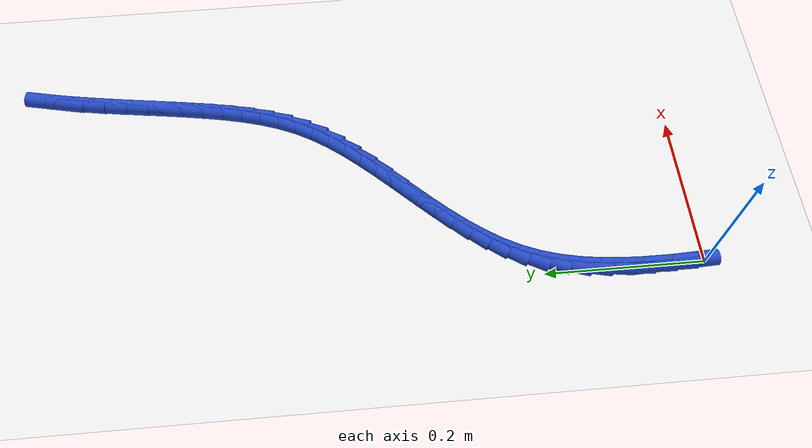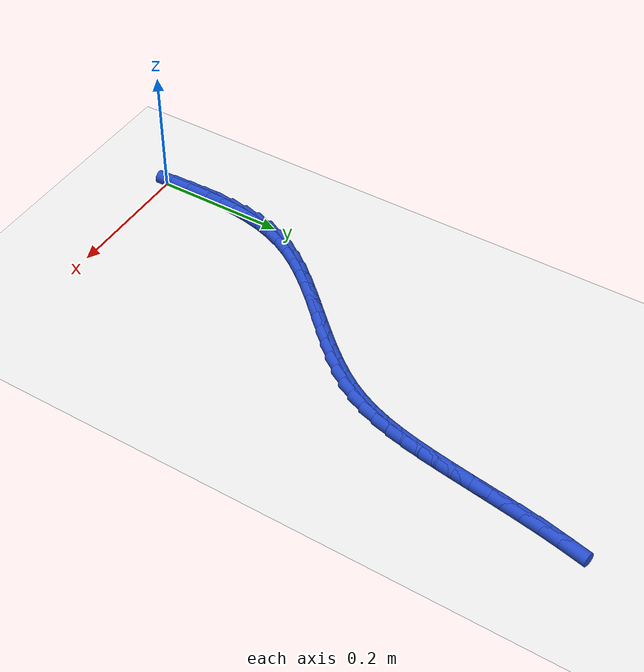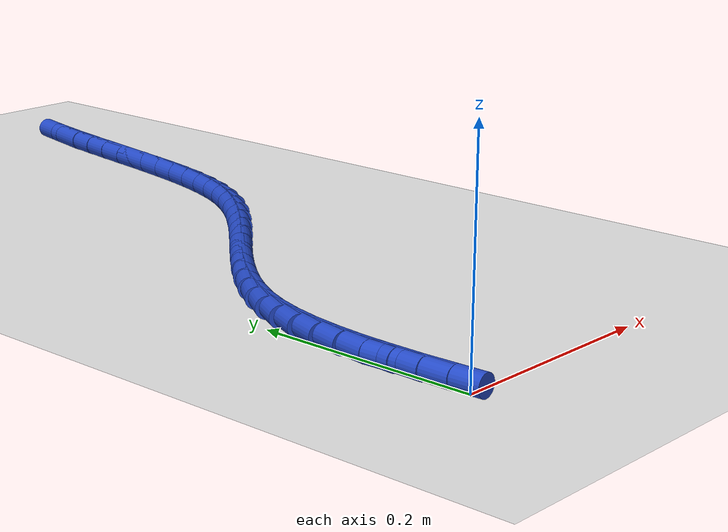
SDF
<sdf version="1.6">
 <world name="default">
  <model name="ground_plane">
   <static>1</static>
   <link name="link">
    <collision name="collision">
     <geometry><plane><normal>0 0 1</normal><size>100 100</size></plane></geometry>
     <surface><friction><ode><mu>100</mu><mu2>50</mu2></ode></friction></surface>
    </collision>
    <visual name="visual">
     <cast_shadows>0</cast_shadows>
     <geometry><plane><normal>0 0 1</normal><size>100 100</size></plane></geometry>
     <material>
      <script><uri>file://media/materials/scripts/gazebo.material</uri><name>Gazebo/WhiteGlow</name></script>
     </material>
    </visual>
   </link>
  </model>
  <model name="line">
   <link name="link_2">
    <pose>-0.001651303130338141 0.05288871180380666 0.01 0 1.57 1.5679038501124116</pose>
    <collision name="collision">
     <geometry><cylinder><radius>0.01</radius><length>0.08</length></cylinder></geometry>
    </collision>
    <visual name="visual">
     <material>
      <script><name>Gazebo/Blue</name><uri>file://media/materials/scripts/gazebo.material</uri></script>
     </material>
     <geometry><cylinder><radius>0.01</radius><length>0.08</length></cylinder></geometry>
    </visual>
   </link>
   <link name="link_3">
    <pose>-0.0015748714768153258 0.07931293186144053 0.01 0 1.57 1.5318934016315766</pose>
    <collision name="collision">
     <geometry><cylinder><radius>0.01</radius><length>0.08</length></cylinder></geometry>
    </collision>
    <visual name="visual">
     <material>
      <script><name>Gazebo/Blue</name><uri>file://media/materials/scripts/gazebo.material</uri></script>
     </material>
     <geometry><cylinder><radius>0.01</radius><length>0.08</length></cylinder></geometry>
    </visual>
   </link>
   <link name="link_4">
    <pose>-0.0005546666619875092 0.10552407373591659 0.01 0 1.57 1.4850914954284056</pose>
    <collision name="collision">
     <geometry><cylinder><radius>0.01</radius><length>0.08</length></cylinder></geometry>
    </collision>
    <visual name="visual">
     <material>
      <script><name>Gazebo/Blue</name><uri>file://media/materials/scripts/gazebo.material</uri></script>
     </material>
     <geometry><cylinder><radius>0.01</radius><length>0.08</length></cylinder></geometry>
    </visual>
   </link>
   <link name="link_5">
    <pose>0.0016660995757781182 0.13137239671200127 0.01 0 1.57 1.4266286491698912</pose>
    <collision name="collision">
     <geometry><cylinder><radius>0.01</radius><length>0.08</length></cylinder></geometry>
    </collision>
    <visual name="visual">
     <material>
      <script><name>Gazebo/Blue</name><uri>file://media/materials/scripts/gazebo.material</uri></script>
     </material>
     <geometry><cylinder><radius>0.01</radius><length>0.08</length></cylinder></geometry>
    </visual>
   </link>
   <link name="link_6">
    <pose>0.005344215498114369 0.15670816007446092 0.01 0 1.57 1.3556345875797808</pose>
    <collision name="collision">
     <geometry><cylinder><radius>0.01</radius><length>0.08</length></cylinder></geometry>
    </collision>
    <visual name="visual">
     <material>
      <script><name>Gazebo/Blue</name><uri>file://media/materials/scripts/gazebo.material</uri></script>
     </material>
     <geometry><cylinder><radius>0.01</radius><length>0.08</length></cylinder></geometry>
    </visual>
   </link>
   <link name="link_7">
    <pose>0.010736469366654046 0.18138162310806194 0.01 0 1.57 1.271485818599171</pose>
    <collision name="collision">
     <geometry><cylinder><radius>0.01</radius><length>0.08</length></cylinder></geometry>
    </collision>
    <visual name="visual">
     <material>
      <script><name>Gazebo/Blue</name><uri>file://media/materials/scripts/gazebo.material</uri></script>
     </material>
     <geometry><cylinder><radius>0.01</radius><length>0.08</length></cylinder></geometry>
    </visual>
   </link>
   <link name="link_8">
    <pose>0.01809964944302997 0.20524304509757088 0.01 0 1.57 1.1742409841898394</pose>
    <collision name="collision">
     <geometry><cylinder><radius>0.01</radius><length>0.08</length></cylinder></geometry>
    </collision>
    <visual name="visual">
     <material>
      <script><name>Gazebo/Blue</name><uri>file://media/materials/scripts/gazebo.material</uri></script>
     </material>
     <geometry><cylinder><radius>0.01</radius><length>0.08</length></cylinder></geometry>
    </visual>
   </link>
   <link name="link_9">
    <pose>0.027688948665799223 0.22814348191232364 0.01 0 1.57 1.0736087766955555</pose>
    <collision name="collision">
     <geometry><cylinder><radius>0.01</radius><length>0.08</length></cylinder></geometry>
    </collision>
    <visual name="visual">
     <material>
      <script><name>Gazebo/Blue</name><uri>file://media/materials/scripts/gazebo.material</uri></script>
     </material>
     <geometry><cylinder><radius>0.01</radius><length>0.08</length></cylinder></geometry>
    </visual>
   </link>
   <link name="link_10">
    <pose>0.03956611918923954 0.250030579226104 0.01 0 1.57 0.9879249587448946</pose>
    <collision name="collision">
     <geometry><cylinder><radius>0.01</radius><length>0.08</length></cylinder></geometry>
    </collision>
    <visual name="visual">
     <material>
      <script><name>Gazebo/Blue</name><uri>file://media/materials/scripts/gazebo.material</uri></script>
     </material>
     <geometry><cylinder><radius>0.01</radius><length>0.08</length></cylinder></geometry>
    </visual>
   </link>
   <link name="link_11">
    <pose>0.05341700344949822 0.2710396838032357 0.01 0 1.57 0.919418216857093</pose>
    <collision name="collision">
     <geometry><cylinder><radius>0.01</radius><length>0.08</length></cylinder></geometry>
    </collision>
    <visual name="visual">
     <material>
      <script><name>Gazebo/Blue</name><uri>file://media/materials/scripts/gazebo.material</uri></script>
     </material>
     <geometry><cylinder><radius>0.01</radius><length>0.08</length></cylinder></geometry>
    </visual>
   </link>
   <link name="link_12">
    <pose>0.06888422368421243 0.29132772333027546 0.01 0 1.57 0.8674553870164292</pose>
    <collision name="collision">
     <geometry><cylinder><radius>0.01</radius><length>0.08</length></cylinder></geometry>
    </collision>
    <visual name="visual">
     <material>
      <script><name>Gazebo/Blue</name><uri>file://media/materials/scripts/gazebo.material</uri></script>
     </material>
     <geometry><cylinder><radius>0.01</radius><length>0.08</length></cylinder></geometry>
    </visual>
   </link>
   <link name="link_13">
    <pose>0.08561040213101945 0.3110516254937802 0.01 0 1.57 0.8310818433353483</pose>
    <collision name="collision">
     <geometry><cylinder><radius>0.01</radius><length>0.08</length></cylinder></geometry>
    </collision>
    <visual name="visual">
     <material>
      <script><name>Gazebo/Blue</name><uri>file://media/materials/scripts/gazebo.material</uri></script>
     </material>
     <geometry><cylinder><radius>0.01</radius><length>0.08</length></cylinder></geometry>
    </visual>
   </link>
   <link name="link_14">
    <pose>0.10323816102755638 0.3303683179803069 0.01 0 1.57 0.8094130949772309</pose>
    <collision name="collision">
     <geometry><cylinder><radius>0.01</radius><length>0.08</length></cylinder></geometry>
    </collision>
    <visual name="visual">
     <material>
      <script><name>Gazebo/Blue</name><uri>file://media/materials/scripts/gazebo.material</uri></script>
     </material>
     <geometry><cylinder><radius>0.01</radius><length>0.08</length></cylinder></geometry>
    </visual>
   </link>
   <link name="link_15">
    <pose>0.12141012261146059 0.3494347284764126 0.01 0 1.57 0.8018509878825213</pose>
    <collision name="collision">
     <geometry><cylinder><radius>0.01</radius><length>0.08</length></cylinder></geometry>
    </collision>
    <visual name="visual">
     <material>
      <script><name>Gazebo/Blue</name><uri>file://media/materials/scripts/gazebo.material</uri></script>
     </material>
     <geometry><cylinder><radius>0.01</radius><length>0.08</length></cylinder></geometry>
    </visual>
   </link>
   <link name="link_16">
    <pose>0.13976890912036913 0.36840778466865387 0.01 0 1.57 0.8081853271306338</pose>
    <collision name="collision">
     <geometry><cylinder><radius>0.01</radius><length>0.08</length></cylinder></geometry>
    </collision>
    <visual name="visual">
     <material>
      <script><name>Gazebo/Blue</name><uri>file://media/materials/scripts/gazebo.material</uri></script>
     </material>
     <geometry><cylinder><radius>0.01</radius><length>0.08</length></cylinder></geometry>
    </visual>
   </link>
   <link name="link_17">
    <pose>0.15795714279191925 0.3874444142435878 0.01 0 1.57 0.8286252430602973</pose>
    <collision name="collision">
     <geometry><cylinder><radius>0.01</radius><length>0.08</length></cylinder></geometry>
    </collision>
    <visual name="visual">
     <material>
      <script><name>Gazebo/Blue</name><uri>file://media/materials/scripts/gazebo.material</uri></script>
     </material>
     <geometry><cylinder><radius>0.01</radius><length>0.08</length></cylinder></geometry>
    </visual>
   </link>
   <link name="link_18">
    <pose>0.17561744586374822 0.40670154488777144 0.01 0 1.57 0.863776128324235</pose>
    <collision name="collision">
     <geometry><cylinder><radius>0.01</radius><length>0.08</length></cylinder></geometry>
    </collision>
    <visual name="visual">
     <material>
      <script><name>Gazebo/Blue</name><uri>file://media/materials/scripts/gazebo.material</uri></script>
     </material>
     <geometry><cylinder><radius>0.01</radius><length>0.08</length></cylinder></geometry>
    </visual>
   </link>
   <link name="link_19">
    <pose>0.19239244057349317 0.42633610428776136 0.01 0 1.57 0.9145477840002221</pose>
    <collision name="collision">
     <geometry><cylinder><radius>0.01</radius><length>0.08</length></cylinder></geometry>
    </collision>
    <visual name="visual">
     <material>
      <script><name>Gazebo/Blue</name><uri>file://media/materials/scripts/gazebo.material</uri></script>
     </material>
     <geometry><cylinder><radius>0.01</radius><length>0.08</length></cylinder></geometry>
    </visual>
   </link>
   <link name="link_20">
    <pose>0.20792474915879142 0.4465050201301148 0.01 0 1.57 0.9819497400595649</pose>
    <collision name="collision">
     <geometry><cylinder><radius>0.01</radius><length>0.08</length></cylinder></geometry>
    </collision>
    <visual name="visual">
     <material>
      <script><name>Gazebo/Blue</name><uri>file://media/materials/scripts/gazebo.material</uri></script>
     </material>
     <geometry><cylinder><radius>0.01</radius><length>0.08</length></cylinder></geometry>
    </visual>
   </link>
   <link name="link_21">
    <pose>0.22185699385728008 0.4673652201013885 0.01 0 1.57 1.0664495328248198</pose>
    <collision name="collision">
     <geometry><cylinder><radius>0.01</radius><length>0.08</length></cylinder></geometry>
    </collision>
    <visual name="visual">
     <material>
      <script><name>Gazebo/Blue</name><uri>file://media/materials/scripts/gazebo.material</uri></script>
     </material>
     <geometry><cylinder><radius>0.01</radius><length>0.08</length></cylinder></geometry>
    </visual>
   </link>
   <link name="link_22">
    <pose>0.23383828106783672 0.48907202196712984 0.01 0 1.57 1.1566327027704366</pose>
    <collision name="collision">
     <geometry><cylinder><radius>0.01</radius><length>0.08</length></cylinder></geometry>
    </collision>
    <visual name="visual">
     <material>
      <script><name>Gazebo/Blue</name><uri>file://media/materials/scripts/gazebo.material</uri></script>
     </material>
     <geometry><cylinder><radius>0.01</radius><length>0.08</length></cylinder></geometry>
    </visual>
   </link>
   <link name="link_23">
    <pose>0.24379099006312477 0.5117128938937678 0.01 0 1.57 1.2354678965027972</pose>
    <collision name="collision">
     <geometry><cylinder><radius>0.01</radius><length>0.08</length></cylinder></geometry>
    </collision>
    <visual name="visual">
     <material>
      <script><name>Gazebo/Blue</name><uri>file://media/materials/scripts/gazebo.material</uri></script>
     </material>
     <geometry><cylinder><radius>0.01</radius><length>0.08</length></cylinder></geometry>
    </visual>
   </link>
   <link name="link_24">
    <pose>0.2520052679101452 0.5352839927621693 0.01 0 1.57 1.3002728856279933</pose>
    <collision name="collision">
     <geometry><cylinder><radius>0.01</radius><length>0.08</length></cylinder></geometry>
    </collision>
    <visual name="visual">
     <material>
      <script><name>Gazebo/Blue</name><uri>file://media/materials/scripts/gazebo.material</uri></script>
     </material>
     <geometry><cylinder><radius>0.01</radius><length>0.08</length></cylinder></geometry>
    </visual>
   </link>
   <link name="link_25">
    <pose>0.25879716888585014 0.5597750430774397 0.01 0 1.57 1.3505907689030405</pose>
    <collision name="collision">
     <geometry><cylinder><radius>0.01</radius><length>0.08</length></cylinder></geometry>
    </collision>
    <visual name="visual">
     <material>
      <script><name>Gazebo/Blue</name><uri>file://media/materials/scripts/gazebo.material</uri></script>
     </material>
     <geometry><cylinder><radius>0.01</radius><length>0.08</length></cylinder></geometry>
    </visual>
   </link>
   <link name="link_26">
    <pose>0.2644827472671916 0.5851757693446847 0.01 0 1.57 1.386769696493441</pose>
    <collision name="collision">
     <geometry><cylinder><radius>0.01</radius><length>0.08</length></cylinder></geometry>
    </collision>
    <visual name="visual">
     <material>
      <script><name>Gazebo/Blue</name><uri>file://media/materials/scripts/gazebo.material</uri></script>
     </material>
     <geometry><cylinder><radius>0.01</radius><length>0.08</length></cylinder></geometry>
    </visual>
   </link>
   <link name="link_27">
    <pose>0.2693780573311219 0.6114758960690103 0.01 0 1.57 1.409644637521641</pose>
    <collision name="collision">
     <geometry><cylinder><radius>0.01</radius><length>0.08</length></cylinder></geometry>
    </collision>
    <visual name="visual">
     <material>
      <script><name>Gazebo/Blue</name><uri>file://media/materials/scripts/gazebo.material</uri></script>
     </material>
     <geometry><cylinder><radius>0.01</radius><length>0.08</length></cylinder></geometry>
    </visual>
   </link>
   <link name="link_28">
    <pose>0.27379764245828614 0.6386630764530923 0.01 0 1.57 1.4220846654886226</pose>
    <collision name="collision">
     <geometry><cylinder><radius>0.01</radius><length>0.08</length></cylinder></geometry>
    </collision>
    <visual name="visual">
     <material>
      <script><name>Gazebo/Blue</name><uri>file://media/materials/scripts/gazebo.material</uri></script>
     </material>
     <geometry><cylinder><radius>0.01</radius><length>0.08</length></cylinder></geometry>
    </visual>
   </link>
   <link name="link_29">
    <pose>0.27798779150113667 0.6666313929036211 0.01 0 1.57 1.427559347863563</pose>
    <collision name="collision">
     <geometry><cylinder><radius>0.01</radius><length>0.08</length></cylinder></geometry>
    </collision>
    <visual name="visual">
     <material>
      <script><name>Gazebo/Blue</name><uri>file://media/materials/scripts/gazebo.material</uri></script>
     </material>
     <geometry><cylinder><radius>0.01</radius><length>0.08</length></cylinder></geometry>
    </visual>
   </link>
   <link name="link_30">
    <pose>0.2821001914309753 0.6951452371890935 0.01 0 1.57 1.4267551082049765</pose>
    <collision name="collision">
     <geometry><cylinder><radius>0.01</radius><length>0.08</length></cylinder></geometry>
    </collision>
    <visual name="visual">
     <material>
      <script><name>Gazebo/Blue</name><uri>file://media/materials/scripts/gazebo.material</uri></script>
     </material>
     <geometry><cylinder><radius>0.01</radius><length>0.08</length></cylinder></geometry>
    </visual>
   </link>
   <link name="link_31">
    <pose>0.2862795722002132 0.7239594636332021 0.01 0 1.57 1.419851659040207</pose>
    <collision name="collision">
     <geometry><cylinder><radius>0.01</radius><length>0.08</length></cylinder></geometry>
    </collision>
    <visual name="visual">
     <material>
      <script><name>Gazebo/Blue</name><uri>file://media/materials/scripts/gazebo.material</uri></script>
     </material>
     <geometry><cylinder><radius>0.01</radius><length>0.08</length></cylinder></geometry>
    </visual>
   </link>
   <link name="link_32">
    <pose>0.29067066376126144 0.7528289265596388 0.01 0 1.57 1.406746815121965</pose>
    <collision name="collision">
     <geometry><cylinder><radius>0.01</radius><length>0.08</length></cylinder></geometry>
    </collision>
    <visual name="visual">
     <material>
      <script><name>Gazebo/Blue</name><uri>file://media/materials/scripts/gazebo.material</uri></script>
     </material>
     <geometry><cylinder><radius>0.01</radius><length>0.08</length></cylinder></geometry>
    </visual>
   </link>
   <link name="link_33">
    <pose>0.2954181960665311 0.7815084802920962 0.01 0 1.57 1.3870611959013026</pose>
    <collision name="collision">
     <geometry><cylinder><radius>0.01</radius><length>0.08</length></cylinder></geometry>
    </collision>
    <visual name="visual">
     <material>
      <script><name>Gazebo/Blue</name><uri>file://media/materials/scripts/gazebo.material</uri></script>
     </material>
     <geometry><cylinder><radius>0.01</radius><length>0.08</length></cylinder></geometry>
    </visual>
   </link>
   <link name="link_34">
    <pose>0.3006668990684332 0.8097529791542658 0.01 0 1.57 1.360120363509948</pose>
    <collision name="collision">
     <geometry><cylinder><radius>0.01</radius><length>0.08</length></cylinder></geometry>
    </collision>
    <visual name="visual">
     <material>
      <script><name>Gazebo/Blue</name><uri>file://media/materials/scripts/gazebo.material</uri></script>
     </material>
     <geometry><cylinder><radius>0.01</radius><length>0.08</length></cylinder></geometry>
    </visual>
   </link>
   <link name="link_281">
    <pose>-0.0010957776022864547 0.026428141505463854 0.01 0 1.57 -1.5334868449048367</pose>
    <collision name="collision">
     <geometry><cylinder><radius>0.01</radius><length>0.08</length></cylinder></geometry>
    </collision>
    <visual name="visual">
     <material>
      <script><name>Gazebo/Blue</name><uri>file://media/materials/scripts/gazebo.material</uri></script>
     </material>
     <geometry><cylinder><radius>0.01</radius><length>0.08</length></cylinder></geometry>
    </visual>
   </link>
   <link name="link_282">
    <pose>-0.0020915248751197536 0.053104609621530796 0.01 0 1.57 -1.5314316755343684</pose>
    <collision name="collision">
     <geometry><cylinder><radius>0.01</radius><length>0.08</length></cylinder></geometry>
    </collision>
    <visual name="visual">
     <material>
      <script><name>Gazebo/Blue</name><uri>file://media/materials/scripts/gazebo.material</uri></script>
     </material>
     <geometry><cylinder><radius>0.01</radius><length>0.08</length></cylinder></geometry>
    </visual>
   </link>
  </model>
 </world>
</sdf>
